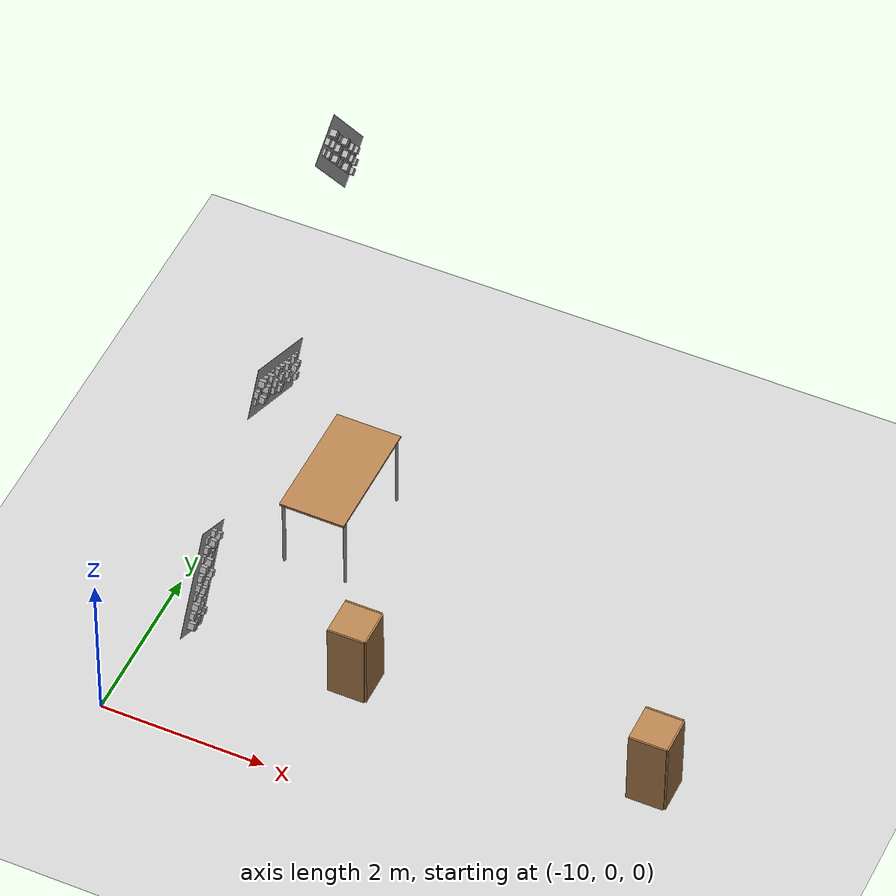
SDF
<sdf version="1.4">
 <world name="default">
  <model name="ground_plane">
   <static>1</static>
   <link name="link">
    <collision name="collision">
     <geometry><plane><normal>0 0 1</normal><size>100 100</size></plane></geometry>
     <surface><friction><ode><mu>100</mu><mu2>50</mu2></ode></friction></surface>
    </collision>
    <visual name="visual">
     <cast_shadows>0</cast_shadows>
     <geometry><plane><normal>0 0 1</normal><size>100 100</size></plane></geometry>
     <material>
      <script><uri>file://media/materials/scripts/gazebo.material</uri><name>Gazebo/Grey</name></script>
     </material>
    </visual>
    <velocity_decay><linear>0</linear><angular>0</angular></velocity_decay>
   </link>
  </model>
  <model name="table">
   <static>1</static>
   <link name="link">
    <collision name="surface">
     <pose>0 0 1 0 -0 0</pose>
     <geometry><box><size>1.5 0.8 0.03</size></box></geometry>
     <surface><friction><ode><mu>0.6</mu><mu2>0.6</mu2></ode></friction></surface>
    </collision>
    <visual name="visual1">
     <pose>0 0 1 0 -0 0</pose>
     <geometry><box><size>1.5 0.8 0.03</size></box></geometry>
     <material>
      <script><uri>file://media/materials/scripts/gazebo.material</uri><name>Gazebo/Wood</name></script>
     </material>
    </visual>
    <collision name="front_left_leg">
     <pose>0.68 0.38 0.5 0 -0 0</pose>
     <geometry><cylinder><radius>0.02</radius><length>1</length></cylinder></geometry>
    </collision>
    <visual name="front_left_leg">
     <pose>0.68 0.38 0.5 0 -0 0</pose>
     <geometry><cylinder><radius>0.02</radius><length>1</length></cylinder></geometry>
     <material>
      <script><uri>file://media/materials/scripts/gazebo.material</uri><name>Gazebo/Grey</name></script>
     </material>
    </visual>
    <collision name="front_right_leg">
     <pose>0.68 -0.38 0.5 0 -0 0</pose>
     <geometry><cylinder><radius>0.02</radius><length>1</length></cylinder></geometry>
    </collision>
    <visual name="front_right_leg">
     <pose>0.68 -0.38 0.5 0 -0 0</pose>
     <geometry><cylinder><radius>0.02</radius><length>1</length></cylinder></geometry>
     <material>
      <script><uri>file://media/materials/scripts/gazebo.material</uri><name>Gazebo/Grey</name></script>
     </material>
    </visual>
    <collision name="back_right_leg">
     <pose>-0.68 -0.38 0.5 0 -0 0</pose>
     <geometry><cylinder><radius>0.02</radius><length>1</length></cylinder></geometry>
    </collision>
    <visual name="back_right_leg">
     <pose>-0.68 -0.38 0.5 0 -0 0</pose>
     <geometry><cylinder><radius>0.02</radius><length>1</length></cylinder></geometry>
     <material>
      <script><uri>file://media/materials/scripts/gazebo.material</uri><name>Gazebo/Grey</name></script>
     </material>
    </visual>
    <collision name="back_left_leg">
     <pose>-0.68 0.38 0.5 0 -0 0</pose>
     <geometry><cylinder><radius>0.02</radius><length>1</length></cylinder></geometry>
    </collision>
    <visual name="back_left_leg">
     <pose>-0.68 0.38 0.5 0 -0 0</pose>
     <geometry><cylinder><radius>0.02</radius><length>1</length></cylinder></geometry>
     <material>
      <script><uri>file://media/materials/scripts/gazebo.material</uri><name>Gazebo/Grey</name></script>
     </material>
    </visual>
    <velocity_decay><linear>0</linear><angular>0</angular></velocity_decay>
   </link>
   <pose>-8.70605 3.47361 0 0 -0 1.56552</pose>
  </model>
  <model name="frc2016_roughterrain">
   <static>1</static>
   <link name="link">
    <visual name="platform">
     <pose>0 0 0.08269 0 -0 0</pose>
     <geometry><box><size>1.27 0.5969 0.003175</size></box></geometry>
    </visual>
    <collision name="platform">
     <pose>0 0 0.08269 0 -0 0</pose>
     <geometry><box><size>1.27 0.5969 0.003175</size></box></geometry>
    </collision>
    <visual name="row1_block1_sm">
     <pose>0.51435 0.1143 0.09698 0 -0 0</pose>
     <geometry><box><size>0.0762 0.0762 0.0254</size></box></geometry>
    </visual>
    <collision name="row1_block1_sm">
     <pose>0.51435 0.1143 0.09698 0 -0 0</pose>
     <geometry><box><size>0.0762 0.0762 0.0254</size></box></geometry>
    </collision>
    <visual name="row1_block2_lg">
     <pose>0.40005 0.1143 0.12238 0 -0 0</pose>
     <geometry><box><size>0.0762 0.0762 0.0762</size></box></geometry>
    </visual>
    <collision name="row1_block2_lg">
     <pose>0.40005 0.1143 0.12238 0 -0 0</pose>
     <geometry><box><size>0.0762 0.0762 0.0762</size></box></geometry>
    </collision>
    <visual name="row1_block3_md">
     <pose>0.28575 0.1143 0.10968 0 -0 0</pose>
     <geometry><box><size>0.0762 0.0762 0.0508</size></box></geometry>
    </visual>
    <collision name="row1_block3_md">
     <pose>0.28575 0.1143 0.10968 0 -0 0</pose>
     <geometry><box><size>0.0762 0.0762 0.0508</size></box></geometry>
    </collision>
    <visual name="row1_block4_sm">
     <pose>0.17145 0.1143 0.09698 0 -0 0</pose>
     <geometry><box><size>0.0762 0.0762 0.0254</size></box></geometry>
    </visual>
    <collision name="row1_block4_sm">
     <pose>0.17145 0.1143 0.09698 0 -0 0</pose>
     <geometry><box><size>0.0762 0.0762 0.0254</size></box></geometry>
    </collision>
    <visual name="row1_block5_md">
     <pose>0.05715 0.1143 0.10968 0 -0 0</pose>
     <geometry><box><size>0.0762 0.0762 0.0508</size></box></geometry>
    </visual>
    <collision name="row1_block5_md">
     <pose>0.05715 0.1143 0.10968 0 -0 0</pose>
     <geometry><box><size>0.0762 0.0762 0.0508</size></box></geometry>
    </collision>
    <visual name="row1_block6_lg">
     <pose>-0.05715 0.1143 0.12238 0 -0 0</pose>
     <geometry><box><size>0.0762 0.0762 0.0762</size></box></geometry>
    </visual>
    <collision name="row1_block6_lg">
     <pose>-0.05715 0.1143 0.12238 0 -0 0</pose>
     <geometry><box><size>0.0762 0.0762 0.0762</size></box></geometry>
    </collision>
    <visual name="row1_block7_sm">
     <pose>-0.17145 0.1143 0.09698 0 -0 0</pose>
     <geometry><box><size>0.0762 0.0762 0.0254</size></box></geometry>
    </visual>
    <collision name="row1_block7_sm">
     <pose>-0.17145 0.1143 0.09698 0 -0 0</pose>
     <geometry><box><size>0.0762 0.0762 0.0254</size></box></geometry>
    </collision>
    <visual name="row1_block8_sm">
     <pose>-0.28575 0.1143 0.09698 0 -0 0</pose>
     <geometry><box><size>0.0762 0.0762 0.0254</size></box></geometry>
    </visual>
    <collision name="row1_block8_sm">
     <pose>-0.28575 0.1143 0.09698 0 -0 0</pose>
     <geometry><box><size>0.0762 0.0762 0.0254</size></box></geometry>
    </collision>
    <visual name="row1_block9_md">
     <pose>-0.40005 0.1143 0.10968 0 -0 0</pose>
     <geometry><box><size>0.0762 0.0762 0.0508</size></box></geometry>
    </visual>
    <collision name="row1_block9_md">
     <pose>-0.40005 0.1143 0.10968 0 -0 0</pose>
     <geometry><box><size>0.0762 0.0762 0.0508</size></box></geometry>
    </collision>
    <visual name="row1_block10_lg">
     <pose>-0.51435 0.1143 0.12238 0 -0 0</pose>
     <geometry><box><size>0.0762 0.0762 0.0762</size></box></geometry>
    </visual>
    <collision name="row1_block10_lg">
     <pose>-0.51435 0.1143 0.12238 0 -0 0</pose>
     <geometry><box><size>0.0762 0.0762 0.0762</size></box></geometry>
    </collision>
    <visual name="row2_block1_md">
     <pose>0.5715 0 0.10968 0 -0 0</pose>
     <geometry><box><size>0.0762 0.0762 0.0508</size></box></geometry>
    </visual>
    <collision name="row2_block1_md">
     <pose>0.5715 0 0.10968 0 -0 0</pose>
     <geometry><box><size>0.0762 0.0762 0.0508</size></box></geometry>
    </collision>
    <visual name="row2_block2_sm">
     <pose>0.4572 0 0.09698 0 -0 0</pose>
     <geometry><box><size>0.0762 0.0762 0.0254</size></box></geometry>
    </visual>
    <collision name="row2_block2_sm">
     <pose>0.4572 0 0.09698 0 -0 0</pose>
     <geometry><box><size>0.0762 0.0762 0.0254</size></box></geometry>
    </collision>
    <visual name="row2_block3_lg">
     <pose>0.3429 0 0.12238 0 -0 0</pose>
     <geometry><box><size>0.0762 0.0762 0.0762</size></box></geometry>
    </visual>
    <collision name="row2_block3_lg">
     <pose>0.3429 0 0.12238 0 -0 0</pose>
     <geometry><box><size>0.0762 0.0762 0.0762</size></box></geometry>
    </collision>
    <visual name="row2_block4_md">
     <pose>0.2286 0 0.10968 0 -0 0</pose>
     <geometry><box><size>0.0762 0.0762 0.0508</size></box></geometry>
    </visual>
    <collision name="row2_block4_md">
     <pose>0.2286 0 0.10968 0 -0 0</pose>
     <geometry><box><size>0.0762 0.0762 0.0508</size></box></geometry>
    </collision>
    <visual name="row2_block5_lg">
     <pose>0.1143 0 0.12238 0 -0 0</pose>
     <geometry><box><size>0.0762 0.0762 0.0762</size></box></geometry>
    </visual>
    <collision name="row2_block5_lg">
     <pose>0.1143 0 0.12238 0 -0 0</pose>
     <geometry><box><size>0.0762 0.0762 0.0762</size></box></geometry>
    </collision>
    <visual name="row2_block6_sm">
     <pose>0 0 0.09698 0 -0 0</pose>
     <geometry><box><size>0.0762 0.0762 0.0254</size></box></geometry>
    </visual>
    <collision name="row2_block6_sm">
     <pose>0 0 0.09698 0 -0 0</pose>
     <geometry><box><size>0.0762 0.0762 0.0254</size></box></geometry>
    </collision>
    <visual name="row2_block7_md">
     <pose>-0.1143 0 0.10968 0 -0 0</pose>
     <geometry><box><size>0.0762 0.0762 0.0508</size></box></geometry>
    </visual>
    <collision name="row2_block7_md">
     <pose>-0.1143 0 0.10968 0 -0 0</pose>
     <geometry><box><size>0.0762 0.0762 0.0508</size></box></geometry>
    </collision>
    <visual name="row2_block8_lg">
     <pose>-0.2286 0 0.12238 0 -0 0</pose>
     <geometry><box><size>0.0762 0.0762 0.0762</size></box></geometry>
    </visual>
    <collision name="row2_block8_lg">
     <pose>-0.2286 0 0.12238 0 -0 0</pose>
     <geometry><box><size>0.0762 0.0762 0.0762</size></box></geometry>
    </collision>
    <visual name="row2_block9_sm">
     <pose>-0.3429 0 0.09698 0 -0 0</pose>
     <geometry><box><size>0.0762 0.0762 0.0254</size></box></geometry>
    </visual>
    <collision name="row2_block9_sm">
     <pose>-0.3429 0 0.09698 0 -0 0</pose>
     <geometry><box><size>0.0762 0.0762 0.0254</size></box></geometry>
    </collision>
    <visual name="row2_block10_lg">
     <pose>-0.4572 0 0.12238 0 -0 0</pose>
     <geometry><box><size>0.0762 0.0762 0.0762</size></box></geometry>
    </visual>
    <collision name="row2_block10_lg">
     <pose>-0.4572 0 0.12238 0 -0 0</pose>
     <geometry><box><size>0.0762 0.0762 0.0762</size></box></geometry>
    </collision>
    <visual name="row2_block11_md">
     <pose>-0.5715 0 0.10968 0 -0 0</pose>
     <geometry><box><size>0.0762 0.0762 0.0508</size></box></geometry>
    </visual>
    <collision name="row2_block11_md">
     <pose>-0.5715 0 0.10968 0 -0 0</pose>
     <geometry><box><size>0.0762 0.0762 0.0508</size></box></geometry>
    </collision>
    <visual name="row3_block1_lg">
     <pose>0.51435 -0.1143 0.12238 0 -0 0</pose>
     <geometry><box><size>0.0762 0.0762 0.0762</size></box></geometry>
    </visual>
    <collision name="row3_block1_lg">
     <pose>0.51435 -0.1143 0.12238 0 -0 0</pose>
     <geometry><box><size>0.0762 0.0762 0.0762</size></box></geometry>
    </collision>
    <visual name="row3_block2_md">
     <pose>0.40005 -0.1143 0.10968 0 -0 0</pose>
     <geometry><box><size>0.0762 0.0762 0.0508</size></box></geometry>
    </visual>
    <collision name="row3_block2_md">
     <pose>0.40005 -0.1143 0.10968 0 -0 0</pose>
     <geometry><box><size>0.0762 0.0762 0.0508</size></box></geometry>
    </collision>
    <visual name="row3_block3_lg">
     <pose>0.28575 -0.1143 0.12238 0 -0 0</pose>
     <geometry><box><size>0.0762 0.0762 0.0762</size></box></geometry>
    </visual>
    <collision name="row3_block3_lg">
     <pose>0.28575 -0.1143 0.12238 0 -0 0</pose>
     <geometry><box><size>0.0762 0.0762 0.0762</size></box></geometry>
    </collision>
    <visual name="row3_block4_sm">
     <pose>0.17145 -0.1143 0.09698 0 -0 0</pose>
     <geometry><box><size>0.0762 0.0762 0.0254</size></box></geometry>
    </visual>
    <collision name="row3_block4_sm">
     <pose>0.17145 -0.1143 0.09698 0 -0 0</pose>
     <geometry><box><size>0.0762 0.0762 0.0254</size></box></geometry>
    </collision>
    <visual name="row3_block5_md">
     <pose>0.05715 -0.1143 0.10968 0 -0 0</pose>
     <geometry><box><size>0.0762 0.0762 0.0508</size></box></geometry>
    </visual>
    <collision name="row3_block5_md">
     <pose>0.05715 -0.1143 0.10968 0 -0 0</pose>
     <geometry><box><size>0.0762 0.0762 0.0508</size></box></geometry>
    </collision>
    <visual name="row3_block6_md">
     <pose>-0.05715 -0.1143 0.10968 0 -0 0</pose>
     <geometry><box><size>0.0762 0.0762 0.0508</size></box></geometry>
    </visual>
    <collision name="row3_block6_md">
     <pose>-0.05715 -0.1143 0.10968 0 -0 0</pose>
     <geometry><box><size>0.0762 0.0762 0.0508</size></box></geometry>
    </collision>
    <visual name="row3_block7_lg">
     <pose>-0.17145 -0.1143 0.12238 0 -0 0</pose>
     <geometry><box><size>0.0762 0.0762 0.0762</size></box></geometry>
    </visual>
    <collision name="row3_block7_lg">
     <pose>-0.17145 -0.1143 0.12238 0 -0 0</pose>
     <geometry><box><size>0.0762 0.0762 0.0762</size></box></geometry>
    </collision>
    <visual name="row3_block8_sm">
     <pose>-0.28575 -0.1143 0.09698 0 -0 0</pose>
     <geometry><box><size>0.0762 0.0762 0.0254</size></box></geometry>
    </visual>
    <collision name="row3_block8_sm">
     <pose>-0.28575 -0.1143 0.09698 0 -0 0</pose>
     <geometry><box><size>0.0762 0.0762 0.0254</size></box></geometry>
    </collision>
    <visual name="row3_block9_md">
     <pose>-0.40005 -0.1143 0.10968 0 -0 0</pose>
     <geometry><box><size>0.0762 0.0762 0.0508</size></box></geometry>
    </visual>
    <collision name="row3_block9_md">
     <pose>-0.40005 -0.1143 0.10968 0 -0 0</pose>
     <geometry><box><size>0.0762 0.0762 0.0508</size></box></geometry>
    </collision>
    <visual name="row3_block10_sm">
     <pose>-0.51435 -0.1143 0.09698 0 -0 0</pose>
     <geometry><box><size>0.0762 0.0762 0.0254</size></box></geometry>
    </visual>
    <collision name="row3_block10_sm">
     <pose>-0.51435 -0.1143 0.09698 0 -0 0</pose>
     <geometry><box><size>0.0762 0.0762 0.0254</size></box></geometry>
    </collision>
    <velocity_decay><linear>0</linear><angular>0</angular></velocity_decay>
   </link>
   <pose>-9.29546 1.00174 1.48268 -1.57835 1.07404 -1.57744</pose>
  </model>
  <model name="frc2016_roughterrain_0">
   <static>1</static>
   <link name="link">
    <visual name="platform">
     <pose>0 0 0.08269 0 -0 0</pose>
     <geometry><box><size>1.27 0.5969 0.003175</size></box></geometry>
    </visual>
    <collision name="platform">
     <pose>0 0 0.08269 0 -0 0</pose>
     <geometry><box><size>1.27 0.5969 0.003175</size></box></geometry>
    </collision>
    <visual name="row1_block1_sm">
     <pose>0.51435 0.1143 0.09698 0 -0 0</pose>
     <geometry><box><size>0.0762 0.0762 0.0254</size></box></geometry>
    </visual>
    <collision name="row1_block1_sm">
     <pose>0.51435 0.1143 0.09698 0 -0 0</pose>
     <geometry><box><size>0.0762 0.0762 0.0254</size></box></geometry>
    </collision>
    <visual name="row1_block2_lg">
     <pose>0.40005 0.1143 0.12238 0 -0 0</pose>
     <geometry><box><size>0.0762 0.0762 0.0762</size></box></geometry>
    </visual>
    <collision name="row1_block2_lg">
     <pose>0.40005 0.1143 0.12238 0 -0 0</pose>
     <geometry><box><size>0.0762 0.0762 0.0762</size></box></geometry>
    </collision>
    <visual name="row1_block3_md">
     <pose>0.28575 0.1143 0.10968 0 -0 0</pose>
     <geometry><box><size>0.0762 0.0762 0.0508</size></box></geometry>
    </visual>
    <collision name="row1_block3_md">
     <pose>0.28575 0.1143 0.10968 0 -0 0</pose>
     <geometry><box><size>0.0762 0.0762 0.0508</size></box></geometry>
    </collision>
    <visual name="row1_block4_sm">
     <pose>0.17145 0.1143 0.09698 0 -0 0</pose>
     <geometry><box><size>0.0762 0.0762 0.0254</size></box></geometry>
    </visual>
    <collision name="row1_block4_sm">
     <pose>0.17145 0.1143 0.09698 0 -0 0</pose>
     <geometry><box><size>0.0762 0.0762 0.0254</size></box></geometry>
    </collision>
    <visual name="row1_block5_md">
     <pose>0.05715 0.1143 0.10968 0 -0 0</pose>
     <geometry><box><size>0.0762 0.0762 0.0508</size></box></geometry>
    </visual>
    <collision name="row1_block5_md">
     <pose>0.05715 0.1143 0.10968 0 -0 0</pose>
     <geometry><box><size>0.0762 0.0762 0.0508</size></box></geometry>
    </collision>
    <visual name="row1_block6_lg">
     <pose>-0.05715 0.1143 0.12238 0 -0 0</pose>
     <geometry><box><size>0.0762 0.0762 0.0762</size></box></geometry>
    </visual>
    <collision name="row1_block6_lg">
     <pose>-0.05715 0.1143 0.12238 0 -0 0</pose>
     <geometry><box><size>0.0762 0.0762 0.0762</size></box></geometry>
    </collision>
    <visual name="row1_block7_sm">
     <pose>-0.17145 0.1143 0.09698 0 -0 0</pose>
     <geometry><box><size>0.0762 0.0762 0.0254</size></box></geometry>
    </visual>
    <collision name="row1_block7_sm">
     <pose>-0.17145 0.1143 0.09698 0 -0 0</pose>
     <geometry><box><size>0.0762 0.0762 0.0254</size></box></geometry>
    </collision>
    <visual name="row1_block8_sm">
     <pose>-0.28575 0.1143 0.09698 0 -0 0</pose>
     <geometry><box><size>0.0762 0.0762 0.0254</size></box></geometry>
    </visual>
    <collision name="row1_block8_sm">
     <pose>-0.28575 0.1143 0.09698 0 -0 0</pose>
     <geometry><box><size>0.0762 0.0762 0.0254</size></box></geometry>
    </collision>
    <visual name="row1_block9_md">
     <pose>-0.40005 0.1143 0.10968 0 -0 0</pose>
     <geometry><box><size>0.0762 0.0762 0.0508</size></box></geometry>
    </visual>
    <collision name="row1_block9_md">
     <pose>-0.40005 0.1143 0.10968 0 -0 0</pose>
     <geometry><box><size>0.0762 0.0762 0.0508</size></box></geometry>
    </collision>
    <visual name="row1_block10_lg">
     <pose>-0.51435 0.1143 0.12238 0 -0 0</pose>
     <geometry><box><size>0.0762 0.0762 0.0762</size></box></geometry>
    </visual>
    <collision name="row1_block10_lg">
     <pose>-0.51435 0.1143 0.12238 0 -0 0</pose>
     <geometry><box><size>0.0762 0.0762 0.0762</size></box></geometry>
    </collision>
    <visual name="row2_block1_md">
     <pose>0.5715 0 0.10968 0 -0 0</pose>
     <geometry><box><size>0.0762 0.0762 0.0508</size></box></geometry>
    </visual>
    <collision name="row2_block1_md">
     <pose>0.5715 0 0.10968 0 -0 0</pose>
     <geometry><box><size>0.0762 0.0762 0.0508</size></box></geometry>
    </collision>
    <visual name="row2_block2_sm">
     <pose>0.4572 0 0.09698 0 -0 0</pose>
     <geometry><box><size>0.0762 0.0762 0.0254</size></box></geometry>
    </visual>
    <collision name="row2_block2_sm">
     <pose>0.4572 0 0.09698 0 -0 0</pose>
     <geometry><box><size>0.0762 0.0762 0.0254</size></box></geometry>
    </collision>
    <visual name="row2_block3_lg">
     <pose>0.3429 0 0.12238 0 -0 0</pose>
     <geometry><box><size>0.0762 0.0762 0.0762</size></box></geometry>
    </visual>
    <collision name="row2_block3_lg">
     <pose>0.3429 0 0.12238 0 -0 0</pose>
     <geometry><box><size>0.0762 0.0762 0.0762</size></box></geometry>
    </collision>
    <visual name="row2_block4_md">
     <pose>0.2286 0 0.10968 0 -0 0</pose>
     <geometry><box><size>0.0762 0.0762 0.0508</size></box></geometry>
    </visual>
    <collision name="row2_block4_md">
     <pose>0.2286 0 0.10968 0 -0 0</pose>
     <geometry><box><size>0.0762 0.0762 0.0508</size></box></geometry>
    </collision>
    <visual name="row2_block5_lg">
     <pose>0.1143 0 0.12238 0 -0 0</pose>
     <geometry><box><size>0.0762 0.0762 0.0762</size></box></geometry>
    </visual>
    <collision name="row2_block5_lg">
     <pose>0.1143 0 0.12238 0 -0 0</pose>
     <geometry><box><size>0.0762 0.0762 0.0762</size></box></geometry>
    </collision>
    <visual name="row2_block6_sm">
     <pose>0 0 0.09698 0 -0 0</pose>
     <geometry><box><size>0.0762 0.0762 0.0254</size></box></geometry>
    </visual>
    <collision name="row2_block6_sm">
     <pose>0 0 0.09698 0 -0 0</pose>
     <geometry><box><size>0.0762 0.0762 0.0254</size></box></geometry>
    </collision>
    <visual name="row2_block7_md">
     <pose>-0.1143 0 0.10968 0 -0 0</pose>
     <geometry><box><size>0.0762 0.0762 0.0508</size></box></geometry>
    </visual>
    <collision name="row2_block7_md">
     <pose>-0.1143 0 0.10968 0 -0 0</pose>
     <geometry><box><size>0.0762 0.0762 0.0508</size></box></geometry>
    </collision>
    <visual name="row2_block8_lg">
     <pose>-0.2286 0 0.12238 0 -0 0</pose>
     <geometry><box><size>0.0762 0.0762 0.0762</size></box></geometry>
    </visual>
    <collision name="row2_block8_lg">
     <pose>-0.2286 0 0.12238 0 -0 0</pose>
     <geometry><box><size>0.0762 0.0762 0.0762</size></box></geometry>
    </collision>
    <visual name="row2_block9_sm">
     <pose>-0.3429 0 0.09698 0 -0 0</pose>
     <geometry><box><size>0.0762 0.0762 0.0254</size></box></geometry>
    </visual>
    <collision name="row2_block9_sm">
     <pose>-0.3429 0 0.09698 0 -0 0</pose>
     <geometry><box><size>0.0762 0.0762 0.0254</size></box></geometry>
    </collision>
    <visual name="row2_block10_lg">
     <pose>-0.4572 0 0.12238 0 -0 0</pose>
     <geometry><box><size>0.0762 0.0762 0.0762</size></box></geometry>
    </visual>
    <collision name="row2_block10_lg">
     <pose>-0.4572 0 0.12238 0 -0 0</pose>
     <geometry><box><size>0.0762 0.0762 0.0762</size></box></geometry>
    </collision>
    <visual name="row2_block11_md">
     <pose>-0.5715 0 0.10968 0 -0 0</pose>
     <geometry><box><size>0.0762 0.0762 0.0508</size></box></geometry>
    </visual>
    <collision name="row2_block11_md">
     <pose>-0.5715 0 0.10968 0 -0 0</pose>
     <geometry><box><size>0.0762 0.0762 0.0508</size></box></geometry>
    </collision>
    <visual name="row3_block1_lg">
     <pose>0.51435 -0.1143 0.12238 0 -0 0</pose>
     <geometry><box><size>0.0762 0.0762 0.0762</size></box></geometry>
    </visual>
    <collision name="row3_block1_lg">
     <pose>0.51435 -0.1143 0.12238 0 -0 0</pose>
     <geometry><box><size>0.0762 0.0762 0.0762</size></box></geometry>
    </collision>
    <visual name="row3_block2_md">
     <pose>0.40005 -0.1143 0.10968 0 -0 0</pose>
     <geometry><box><size>0.0762 0.0762 0.0508</size></box></geometry>
    </visual>
    <collision name="row3_block2_md">
     <pose>0.40005 -0.1143 0.10968 0 -0 0</pose>
     <geometry><box><size>0.0762 0.0762 0.0508</size></box></geometry>
    </collision>
    <visual name="row3_block3_lg">
     <pose>0.28575 -0.1143 0.12238 0 -0 0</pose>
     <geometry><box><size>0.0762 0.0762 0.0762</size></box></geometry>
    </visual>
    <collision name="row3_block3_lg">
     <pose>0.28575 -0.1143 0.12238 0 -0 0</pose>
     <geometry><box><size>0.0762 0.0762 0.0762</size></box></geometry>
    </collision>
    <visual name="row3_block4_sm">
     <pose>0.17145 -0.1143 0.09698 0 -0 0</pose>
     <geometry><box><size>0.0762 0.0762 0.0254</size></box></geometry>
    </visual>
    <collision name="row3_block4_sm">
     <pose>0.17145 -0.1143 0.09698 0 -0 0</pose>
     <geometry><box><size>0.0762 0.0762 0.0254</size></box></geometry>
    </collision>
    <visual name="row3_block5_md">
     <pose>0.05715 -0.1143 0.10968 0 -0 0</pose>
     <geometry><box><size>0.0762 0.0762 0.0508</size></box></geometry>
    </visual>
    <collision name="row3_block5_md">
     <pose>0.05715 -0.1143 0.10968 0 -0 0</pose>
     <geometry><box><size>0.0762 0.0762 0.0508</size></box></geometry>
    </collision>
    <visual name="row3_block6_md">
     <pose>-0.05715 -0.1143 0.10968 0 -0 0</pose>
     <geometry><box><size>0.0762 0.0762 0.0508</size></box></geometry>
    </visual>
    <collision name="row3_block6_md">
     <pose>-0.05715 -0.1143 0.10968 0 -0 0</pose>
     <geometry><box><size>0.0762 0.0762 0.0508</size></box></geometry>
    </collision>
    <visual name="row3_block7_lg">
     <pose>-0.17145 -0.1143 0.12238 0 -0 0</pose>
     <geometry><box><size>0.0762 0.0762 0.0762</size></box></geometry>
    </visual>
    <collision name="row3_block7_lg">
     <pose>-0.17145 -0.1143 0.12238 0 -0 0</pose>
     <geometry><box><size>0.0762 0.0762 0.0762</size></box></geometry>
    </collision>
    <visual name="row3_block8_sm">
     <pose>-0.28575 -0.1143 0.09698 0 -0 0</pose>
     <geometry><box><size>0.0762 0.0762 0.0254</size></box></geometry>
    </visual>
    <collision name="row3_block8_sm">
     <pose>-0.28575 -0.1143 0.09698 0 -0 0</pose>
     <geometry><box><size>0.0762 0.0762 0.0254</size></box></geometry>
    </collision>
    <visual name="row3_block9_md">
     <pose>-0.40005 -0.1143 0.10968 0 -0 0</pose>
     <geometry><box><size>0.0762 0.0762 0.0508</size></box></geometry>
    </visual>
    <collision name="row3_block9_md">
     <pose>-0.40005 -0.1143 0.10968 0 -0 0</pose>
     <geometry><box><size>0.0762 0.0762 0.0508</size></box></geometry>
    </collision>
    <visual name="row3_block10_sm">
     <pose>-0.51435 -0.1143 0.09698 0 -0 0</pose>
     <geometry><box><size>0.0762 0.0762 0.0254</size></box></geometry>
    </visual>
    <collision name="row3_block10_sm">
     <pose>-0.51435 -0.1143 0.09698 0 -0 0</pose>
     <geometry><box><size>0.0762 0.0762 0.0254</size></box></geometry>
    </collision>
    <velocity_decay><linear>0</linear><angular>0</angular></velocity_decay>
   </link>
   <pose>-9.31702 2.94589 2.81319 -1.59145 -0.468069 -1.56148</pose>
  </model>
  <model name="frc2016_roughterrain_3">
   <static>1</static>
   <link name="link">
    <visual name="platform">
     <pose>0 0 0.08269 0 -0 0</pose>
     <geometry><box><size>1.27 0.5969 0.003175</size></box></geometry>
    </visual>
    <collision name="platform">
     <pose>0 0 0.08269 0 -0 0</pose>
     <geometry><box><size>1.27 0.5969 0.003175</size></box></geometry>
    </collision>
    <visual name="row1_block1_sm">
     <pose>0.51435 0.1143 0.09698 0 -0 0</pose>
     <geometry><box><size>0.0762 0.0762 0.0254</size></box></geometry>
    </visual>
    <collision name="row1_block1_sm">
     <pose>0.51435 0.1143 0.09698 0 -0 0</pose>
     <geometry><box><size>0.0762 0.0762 0.0254</size></box></geometry>
    </collision>
    <visual name="row1_block2_lg">
     <pose>0.40005 0.1143 0.12238 0 -0 0</pose>
     <geometry><box><size>0.0762 0.0762 0.0762</size></box></geometry>
    </visual>
    <collision name="row1_block2_lg">
     <pose>0.40005 0.1143 0.12238 0 -0 0</pose>
     <geometry><box><size>0.0762 0.0762 0.0762</size></box></geometry>
    </collision>
    <visual name="row1_block3_md">
     <pose>0.28575 0.1143 0.10968 0 -0 0</pose>
     <geometry><box><size>0.0762 0.0762 0.0508</size></box></geometry>
    </visual>
    <collision name="row1_block3_md">
     <pose>0.28575 0.1143 0.10968 0 -0 0</pose>
     <geometry><box><size>0.0762 0.0762 0.0508</size></box></geometry>
    </collision>
    <visual name="row1_block4_sm">
     <pose>0.17145 0.1143 0.09698 0 -0 0</pose>
     <geometry><box><size>0.0762 0.0762 0.0254</size></box></geometry>
    </visual>
    <collision name="row1_block4_sm">
     <pose>0.17145 0.1143 0.09698 0 -0 0</pose>
     <geometry><box><size>0.0762 0.0762 0.0254</size></box></geometry>
    </collision>
    <visual name="row1_block5_md">
     <pose>0.05715 0.1143 0.10968 0 -0 0</pose>
     <geometry><box><size>0.0762 0.0762 0.0508</size></box></geometry>
    </visual>
    <collision name="row1_block5_md">
     <pose>0.05715 0.1143 0.10968 0 -0 0</pose>
     <geometry><box><size>0.0762 0.0762 0.0508</size></box></geometry>
    </collision>
    <visual name="row1_block6_lg">
     <pose>-0.05715 0.1143 0.12238 0 -0 0</pose>
     <geometry><box><size>0.0762 0.0762 0.0762</size></box></geometry>
    </visual>
    <collision name="row1_block6_lg">
     <pose>-0.05715 0.1143 0.12238 0 -0 0</pose>
     <geometry><box><size>0.0762 0.0762 0.0762</size></box></geometry>
    </collision>
    <visual name="row1_block7_sm">
     <pose>-0.17145 0.1143 0.09698 0 -0 0</pose>
     <geometry><box><size>0.0762 0.0762 0.0254</size></box></geometry>
    </visual>
    <collision name="row1_block7_sm">
     <pose>-0.17145 0.1143 0.09698 0 -0 0</pose>
     <geometry><box><size>0.0762 0.0762 0.0254</size></box></geometry>
    </collision>
    <visual name="row1_block8_sm">
     <pose>-0.28575 0.1143 0.09698 0 -0 0</pose>
     <geometry><box><size>0.0762 0.0762 0.0254</size></box></geometry>
    </visual>
    <collision name="row1_block8_sm">
     <pose>-0.28575 0.1143 0.09698 0 -0 0</pose>
     <geometry><box><size>0.0762 0.0762 0.0254</size></box></geometry>
    </collision>
    <visual name="row1_block9_md">
     <pose>-0.40005 0.1143 0.10968 0 -0 0</pose>
     <geometry><box><size>0.0762 0.0762 0.0508</size></box></geometry>
    </visual>
    <collision name="row1_block9_md">
     <pose>-0.40005 0.1143 0.10968 0 -0 0</pose>
     <geometry><box><size>0.0762 0.0762 0.0508</size></box></geometry>
    </collision>
    <visual name="row1_block10_lg">
     <pose>-0.51435 0.1143 0.12238 0 -0 0</pose>
     <geometry><box><size>0.0762 0.0762 0.0762</size></box></geometry>
    </visual>
    <collision name="row1_block10_lg">
     <pose>-0.51435 0.1143 0.12238 0 -0 0</pose>
     <geometry><box><size>0.0762 0.0762 0.0762</size></box></geometry>
    </collision>
    <visual name="row2_block1_md">
     <pose>0.5715 0 0.10968 0 -0 0</pose>
     <geometry><box><size>0.0762 0.0762 0.0508</size></box></geometry>
    </visual>
    <collision name="row2_block1_md">
     <pose>0.5715 0 0.10968 0 -0 0</pose>
     <geometry><box><size>0.0762 0.0762 0.0508</size></box></geometry>
    </collision>
    <visual name="row2_block2_sm">
     <pose>0.4572 0 0.09698 0 -0 0</pose>
     <geometry><box><size>0.0762 0.0762 0.0254</size></box></geometry>
    </visual>
    <collision name="row2_block2_sm">
     <pose>0.4572 0 0.09698 0 -0 0</pose>
     <geometry><box><size>0.0762 0.0762 0.0254</size></box></geometry>
    </collision>
    <visual name="row2_block3_lg">
     <pose>0.3429 0 0.12238 0 -0 0</pose>
     <geometry><box><size>0.0762 0.0762 0.0762</size></box></geometry>
    </visual>
    <collision name="row2_block3_lg">
     <pose>0.3429 0 0.12238 0 -0 0</pose>
     <geometry><box><size>0.0762 0.0762 0.0762</size></box></geometry>
    </collision>
    <visual name="row2_block4_md">
     <pose>0.2286 0 0.10968 0 -0 0</pose>
     <geometry><box><size>0.0762 0.0762 0.0508</size></box></geometry>
    </visual>
    <collision name="row2_block4_md">
     <pose>0.2286 0 0.10968 0 -0 0</pose>
     <geometry><box><size>0.0762 0.0762 0.0508</size></box></geometry>
    </collision>
    <visual name="row2_block5_lg">
     <pose>0.1143 0 0.12238 0 -0 0</pose>
     <geometry><box><size>0.0762 0.0762 0.0762</size></box></geometry>
    </visual>
    <collision name="row2_block5_lg">
     <pose>0.1143 0 0.12238 0 -0 0</pose>
     <geometry><box><size>0.0762 0.0762 0.0762</size></box></geometry>
    </collision>
    <visual name="row2_block6_sm">
     <pose>0 0 0.09698 0 -0 0</pose>
     <geometry><box><size>0.0762 0.0762 0.0254</size></box></geometry>
    </visual>
    <collision name="row2_block6_sm">
     <pose>0 0 0.09698 0 -0 0</pose>
     <geometry><box><size>0.0762 0.0762 0.0254</size></box></geometry>
    </collision>
    <visual name="row2_block7_md">
     <pose>-0.1143 0 0.10968 0 -0 0</pose>
     <geometry><box><size>0.0762 0.0762 0.0508</size></box></geometry>
    </visual>
    <collision name="row2_block7_md">
     <pose>-0.1143 0 0.10968 0 -0 0</pose>
     <geometry><box><size>0.0762 0.0762 0.0508</size></box></geometry>
    </collision>
    <visual name="row2_block8_lg">
     <pose>-0.2286 0 0.12238 0 -0 0</pose>
     <geometry><box><size>0.0762 0.0762 0.0762</size></box></geometry>
    </visual>
    <collision name="row2_block8_lg">
     <pose>-0.2286 0 0.12238 0 -0 0</pose>
     <geometry><box><size>0.0762 0.0762 0.0762</size></box></geometry>
    </collision>
    <visual name="row2_block9_sm">
     <pose>-0.3429 0 0.09698 0 -0 0</pose>
     <geometry><box><size>0.0762 0.0762 0.0254</size></box></geometry>
    </visual>
    <collision name="row2_block9_sm">
     <pose>-0.3429 0 0.09698 0 -0 0</pose>
     <geometry><box><size>0.0762 0.0762 0.0254</size></box></geometry>
    </collision>
    <visual name="row2_block10_lg">
     <pose>-0.4572 0 0.12238 0 -0 0</pose>
     <geometry><box><size>0.0762 0.0762 0.0762</size></box></geometry>
    </visual>
    <collision name="row2_block10_lg">
     <pose>-0.4572 0 0.12238 0 -0 0</pose>
     <geometry><box><size>0.0762 0.0762 0.0762</size></box></geometry>
    </collision>
    <visual name="row2_block11_md">
     <pose>-0.5715 0 0.10968 0 -0 0</pose>
     <geometry><box><size>0.0762 0.0762 0.0508</size></box></geometry>
    </visual>
    <collision name="row2_block11_md">
     <pose>-0.5715 0 0.10968 0 -0 0</pose>
     <geometry><box><size>0.0762 0.0762 0.0508</size></box></geometry>
    </collision>
    <visual name="row3_block1_lg">
     <pose>0.51435 -0.1143 0.12238 0 -0 0</pose>
     <geometry><box><size>0.0762 0.0762 0.0762</size></box></geometry>
    </visual>
    <collision name="row3_block1_lg">
     <pose>0.51435 -0.1143 0.12238 0 -0 0</pose>
     <geometry><box><size>0.0762 0.0762 0.0762</size></box></geometry>
    </collision>
    <visual name="row3_block2_md">
     <pose>0.40005 -0.1143 0.10968 0 -0 0</pose>
     <geometry><box><size>0.0762 0.0762 0.0508</size></box></geometry>
    </visual>
    <collision name="row3_block2_md">
     <pose>0.40005 -0.1143 0.10968 0 -0 0</pose>
     <geometry><box><size>0.0762 0.0762 0.0508</size></box></geometry>
    </collision>
    <visual name="row3_block3_lg">
     <pose>0.28575 -0.1143 0.12238 0 -0 0</pose>
     <geometry><box><size>0.0762 0.0762 0.0762</size></box></geometry>
    </visual>
    <collision name="row3_block3_lg">
     <pose>0.28575 -0.1143 0.12238 0 -0 0</pose>
     <geometry><box><size>0.0762 0.0762 0.0762</size></box></geometry>
    </collision>
    <visual name="row3_block4_sm">
     <pose>0.17145 -0.1143 0.09698 0 -0 0</pose>
     <geometry><box><size>0.0762 0.0762 0.0254</size></box></geometry>
    </visual>
    <collision name="row3_block4_sm">
     <pose>0.17145 -0.1143 0.09698 0 -0 0</pose>
     <geometry><box><size>0.0762 0.0762 0.0254</size></box></geometry>
    </collision>
    <visual name="row3_block5_md">
     <pose>0.05715 -0.1143 0.10968 0 -0 0</pose>
     <geometry><box><size>0.0762 0.0762 0.0508</size></box></geometry>
    </visual>
    <collision name="row3_block5_md">
     <pose>0.05715 -0.1143 0.10968 0 -0 0</pose>
     <geometry><box><size>0.0762 0.0762 0.0508</size></box></geometry>
    </collision>
    <visual name="row3_block6_md">
     <pose>-0.05715 -0.1143 0.10968 0 -0 0</pose>
     <geometry><box><size>0.0762 0.0762 0.0508</size></box></geometry>
    </visual>
    <collision name="row3_block6_md">
     <pose>-0.05715 -0.1143 0.10968 0 -0 0</pose>
     <geometry><box><size>0.0762 0.0762 0.0508</size></box></geometry>
    </collision>
    <visual name="row3_block7_lg">
     <pose>-0.17145 -0.1143 0.12238 0 -0 0</pose>
     <geometry><box><size>0.0762 0.0762 0.0762</size></box></geometry>
    </visual>
    <collision name="row3_block7_lg">
     <pose>-0.17145 -0.1143 0.12238 0 -0 0</pose>
     <geometry><box><size>0.0762 0.0762 0.0762</size></box></geometry>
    </collision>
    <visual name="row3_block8_sm">
     <pose>-0.28575 -0.1143 0.09698 0 -0 0</pose>
     <geometry><box><size>0.0762 0.0762 0.0254</size></box></geometry>
    </visual>
    <collision name="row3_block8_sm">
     <pose>-0.28575 -0.1143 0.09698 0 -0 0</pose>
     <geometry><box><size>0.0762 0.0762 0.0254</size></box></geometry>
    </collision>
    <visual name="row3_block9_md">
     <pose>-0.40005 -0.1143 0.10968 0 -0 0</pose>
     <geometry><box><size>0.0762 0.0762 0.0508</size></box></geometry>
    </visual>
    <collision name="row3_block9_md">
     <pose>-0.40005 -0.1143 0.10968 0 -0 0</pose>
     <geometry><box><size>0.0762 0.0762 0.0508</size></box></geometry>
    </collision>
    <visual name="row3_block10_sm">
     <pose>-0.51435 -0.1143 0.09698 0 -0 0</pose>
     <geometry><box><size>0.0762 0.0762 0.0254</size></box></geometry>
    </visual>
    <collision name="row3_block10_sm">
     <pose>-0.51435 -0.1143 0.09698 0 -0 0</pose>
     <geometry><box><size>0.0762 0.0762 0.0254</size></box></geometry>
    </collision>
    <velocity_decay><linear>0</linear><angular>0</angular></velocity_decay>
   </link>
   <pose>-9.33545 4.66212 4.77186 1.58005 0.939946 1.57827</pose>
  </model>
  <model name="cabinet_1">
   <static>1</static>
   <link name="cabinet_bottom_plate">
    <inertial>
     <pose>0 0 -1 0 -0 0</pose>
     <inertia><ixx>2.05</ixx><ixy>0</ixy><ixz>0</ixz><iyy>2.05</iyy><iyz>0</iyz><izz>2.05</izz></inertia>
     <mass>25</mass>
    </inertial>
    <collision name="cabinet_bottom_plate_geom">
     <pose>0 0 0.01 0 -0 0</pose>
     <geometry><box><size>0.45 0.45 0.02</size></box></geometry>
    </collision>
    <visual name="cabinet_bottom_plate_geom_visual">
     <pose>0 0 0.01 0 -0 0</pose>
     <geometry><box><size>0.45 0.45 0.02</size></box></geometry>
     <material>
      <script><uri>file://media/materials/scripts/gazebo.material</uri><name>Gazebo/Wood</name></script>
     </material>
    </visual>
    <collision name="cabinet_bottom_plate_geom_cabinet_back_plate">
     <pose>0.235 0 0.51 0 -0 0</pose>
     <geometry><box><size>0.02 0.45 1.02</size></box></geometry>
    </collision>
    <visual name="cabinet_bottom_plate_geom_cabinet_back_plate_visual">
     <pose>0.235 0 0.51 0 -0 0</pose>
     <geometry><box><size>0.02 0.45 1.02</size></box></geometry>
     <material>
      <script><uri>file://media/materials/scripts/gazebo.material</uri><name>Gazebo/Wood</name></script>
     </material>
    </visual>
    <collision name="cabinet_bottom_plate_geom_cabinet_left_plate">
     <pose>0 0.235 0.51 0 -0 0</pose>
     <geometry><box><size>0.45 0.02 1.02</size></box></geometry>
    </collision>
    <visual name="cabinet_bottom_plate_geom_cabinet_left_plate_visual">
     <pose>0 0.235 0.51 0 -0 0</pose>
     <geometry><box><size>0.45 0.02 1.02</size></box></geometry>
     <material>
      <script><uri>file://media/materials/scripts/gazebo.material</uri><name>Gazebo/Wood</name></script>
     </material>
    </visual>
    <collision name="cabinet_bottom_plate_geom_cabinet_middle_plate">
     <pose>0 0 0.51 0 -0 0</pose>
     <geometry><box><size>0.45 0.45 0.02</size></box></geometry>
    </collision>
    <visual name="cabinet_bottom_plate_geom_cabinet_middle_plate_visual">
     <pose>0 0 0.51 0 -0 0</pose>
     <geometry><box><size>0.45 0.45 0.02</size></box></geometry>
     <material>
      <script><uri>file://media/materials/scripts/gazebo.material</uri><name>Gazebo/Wood</name></script>
     </material>
    </visual>
    <collision name="cabinet_bottom_plate_geom_cabinet_right_plate">
     <pose>0 -0.235 0.51 0 -0 0</pose>
     <geometry><box><size>0.45 0.02 1.02</size></box></geometry>
    </collision>
    <visual name="cabinet_bottom_plate_geom_cabinet_right_plate_visual">
     <pose>0 -0.235 0.51 0 -0 0</pose>
     <geometry><box><size>0.45 0.02 1.02</size></box></geometry>
     <material>
      <script><uri>file://media/materials/scripts/gazebo.material</uri><name>Gazebo/Wood</name></script>
     </material>
    </visual>
    <collision name="cabinet_bottom_plate_geom_cabinet_top_plate">
     <pose>0 0 1.01 0 -0 0</pose>
     <geometry><box><size>0.45 0.45 0.02</size></box></geometry>
    </collision>
    <visual name="cabinet_bottom_plate_geom_cabinet_top_plate_visual">
     <pose>0 0 1.01 0 -0 0</pose>
     <geometry><box><size>0.45 0.45 0.02</size></box></geometry>
     <material>
      <script><uri>file://media/materials/scripts/gazebo.material</uri><name>Gazebo/Wood</name></script>
     </material>
    </visual>
    <velocity_decay><linear>0</linear><angular>0</angular></velocity_decay>
   </link>
   <pose>-4 1.50771 0 0 -0 0</pose>
  </model>
  <model name="cabinet_2">
   <static>1</static>
   <link name="cabinet_bottom_plate">
    <inertial>
     <pose>0 0 -1 0 -0 0</pose>
     <inertia><ixx>2.05</ixx><ixy>0</ixy><ixz>0</ixz><iyy>2.05</iyy><iyz>0</iyz><izz>2.05</izz></inertia>
     <mass>25</mass>
    </inertial>
    <collision name="cabinet_bottom_plate_geom">
     <pose>0 0 0.01 0 -0 0</pose>
     <geometry><box><size>0.45 0.45 0.02</size></box></geometry>
    </collision>
    <visual name="cabinet_bottom_plate_geom_visual">
     <pose>0 0 0.01 0 -0 0</pose>
     <geometry><box><size>0.45 0.45 0.02</size></box></geometry>
     <material>
      <script><uri>file://media/materials/scripts/gazebo.material</uri><name>Gazebo/Wood</name></script>
     </material>
    </visual>
    <collision name="cabinet_bottom_plate_geom_cabinet_back_plate">
     <pose>0.235 0 0.51 0 -0 0</pose>
     <geometry><box><size>0.02 0.45 1.02</size></box></geometry>
    </collision>
    <visual name="cabinet_bottom_plate_geom_cabinet_back_plate_visual">
     <pose>0.235 0 0.51 0 -0 0</pose>
     <geometry><box><size>0.02 0.45 1.02</size></box></geometry>
     <material>
      <script><uri>file://media/materials/scripts/gazebo.material</uri><name>Gazebo/Wood</name></script>
     </material>
    </visual>
    <collision name="cabinet_bottom_plate_geom_cabinet_left_plate">
     <pose>0 0.235 0.51 0 -0 0</pose>
     <geometry><box><size>0.45 0.02 1.02</size></box></geometry>
    </collision>
    <visual name="cabinet_bottom_plate_geom_cabinet_left_plate_visual">
     <pose>0 0.235 0.51 0 -0 0</pose>
     <geometry><box><size>0.45 0.02 1.02</size></box></geometry>
     <material>
      <script><uri>file://media/materials/scripts/gazebo.material</uri><name>Gazebo/Wood</name></script>
     </material>
    </visual>
    <collision name="cabinet_bottom_plate_geom_cabinet_middle_plate">
     <pose>0 0 0.51 0 -0 0</pose>
     <geometry><box><size>0.45 0.45 0.02</size></box></geometry>
    </collision>
    <visual name="cabinet_bottom_plate_geom_cabinet_middle_plate_visual">
     <pose>0 0 0.51 0 -0 0</pose>
     <geometry><box><size>0.45 0.45 0.02</size></box></geometry>
     <material>
      <script><uri>file://media/materials/scripts/gazebo.material</uri><name>Gazebo/Wood</name></script>
     </material>
    </visual>
    <collision name="cabinet_bottom_plate_geom_cabinet_right_plate">
     <pose>0 -0.235 0.51 0 -0 0</pose>
     <geometry><box><size>0.45 0.02 1.02</size></box></geometry>
    </collision>
    <visual name="cabinet_bottom_plate_geom_cabinet_right_plate_visual">
     <pose>0 -0.235 0.51 0 -0 0</pose>
     <geometry><box><size>0.45 0.02 1.02</size></box></geometry>
     <material>
      <script><uri>file://media/materials/scripts/gazebo.material</uri><name>Gazebo/Wood</name></script>
     </material>
    </visual>
    <collision name="cabinet_bottom_plate_geom_cabinet_top_plate">
     <pose>0 0 1.01 0 -0 0</pose>
     <geometry><box><size>0.45 0.45 0.02</size></box></geometry>
    </collision>
    <visual name="cabinet_bottom_plate_geom_cabinet_top_plate_visual">
     <pose>0 0 1.01 0 -0 0</pose>
     <geometry><box><size>0.45 0.45 0.02</size></box></geometry>
     <material>
      <script><uri>file://media/materials/scripts/gazebo.material</uri><name>Gazebo/Wood</name></script>
     </material>
    </visual>
    <velocity_decay><linear>0</linear><angular>0</angular></velocity_decay>
   </link>
   <pose>-7.60529 1.51046 0 0 -0 0</pose>
  </model>
 </world>
</sdf>
